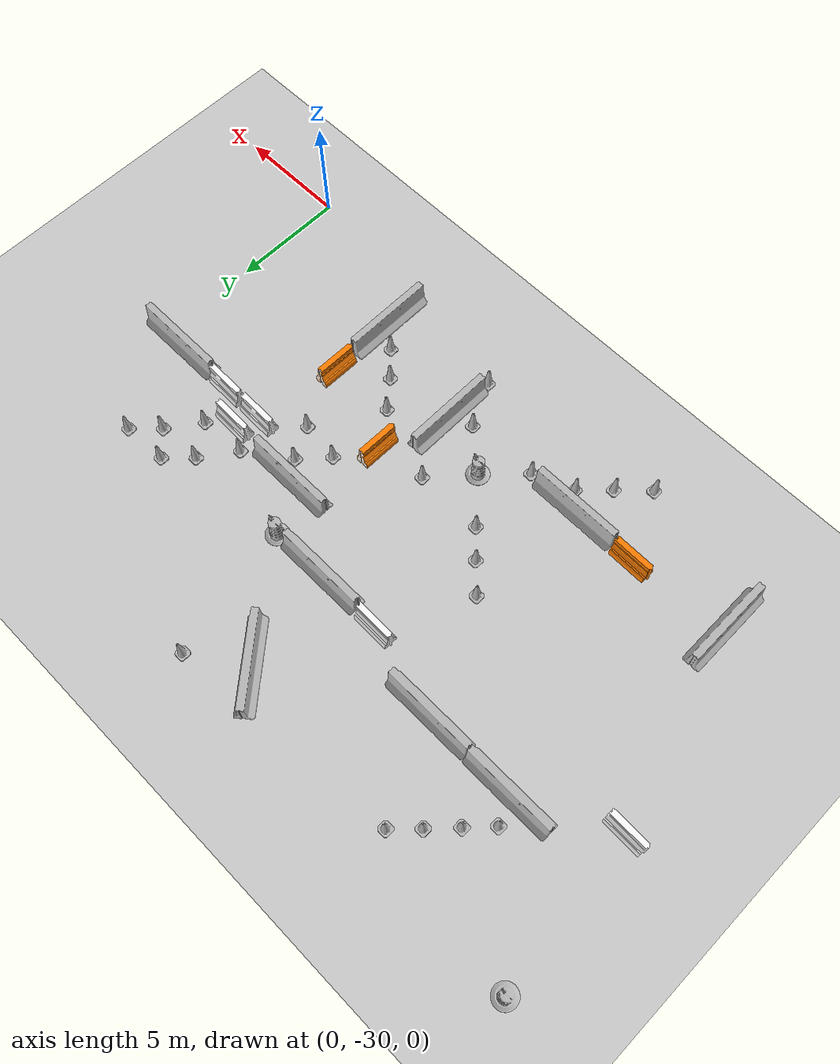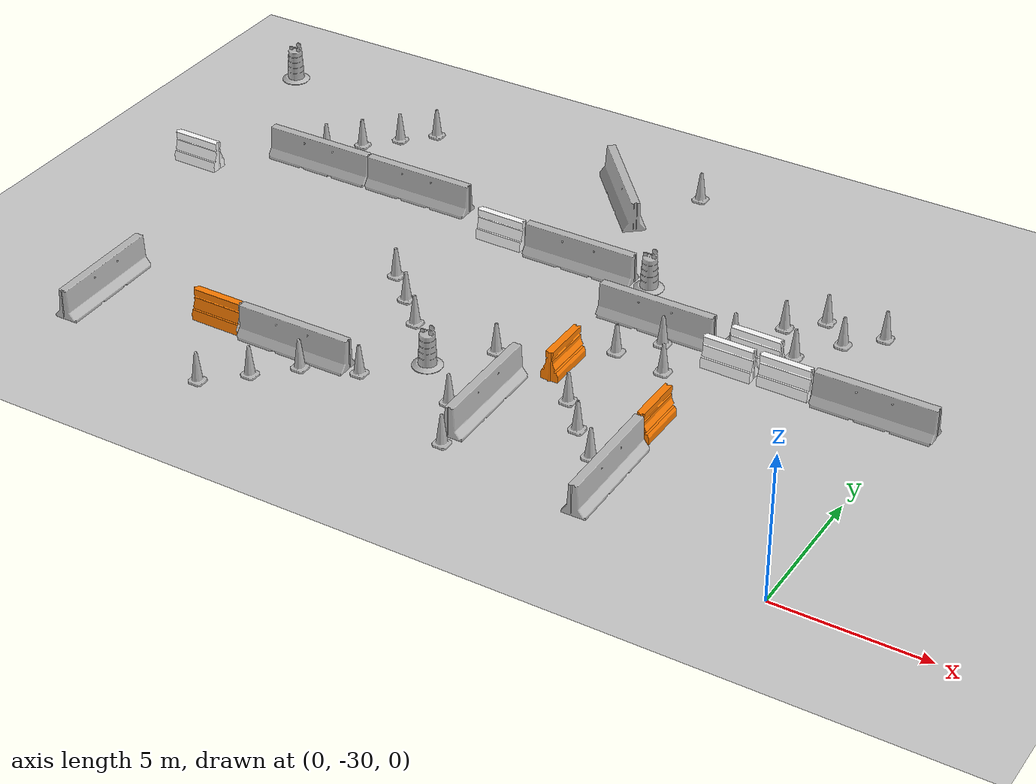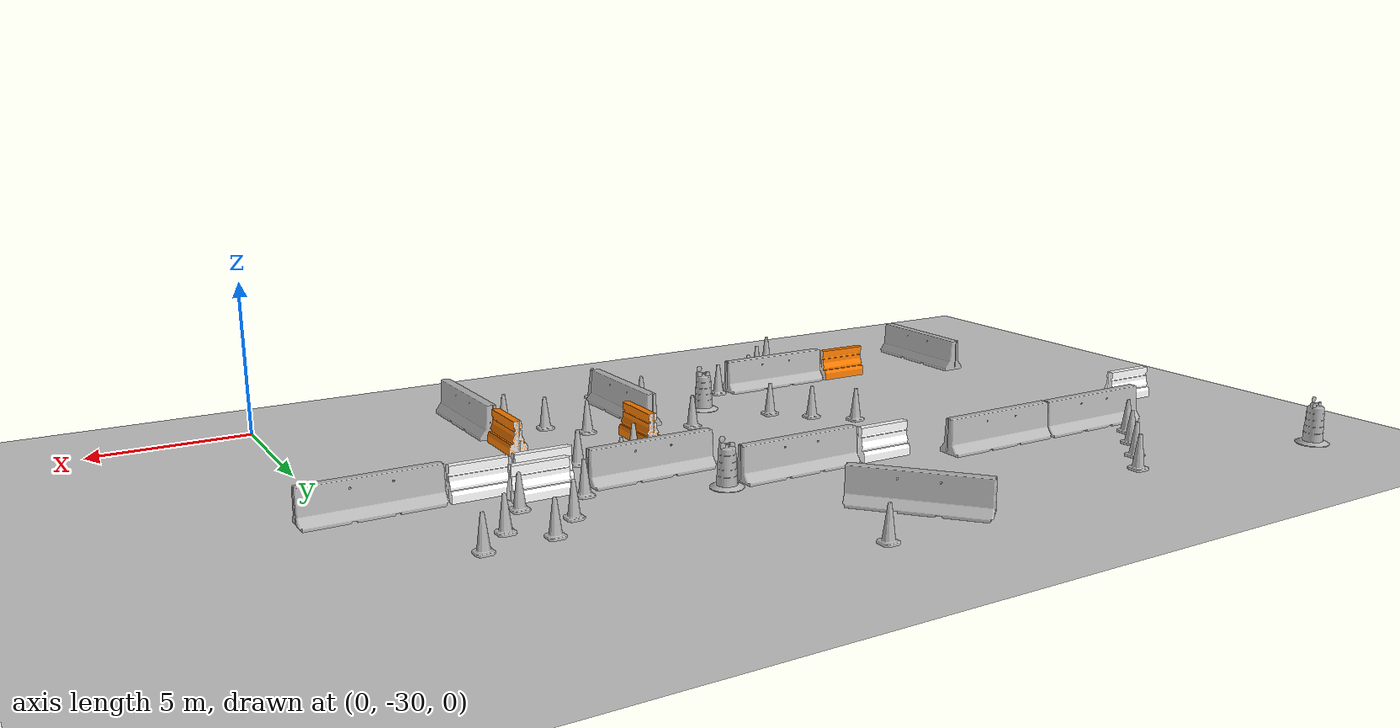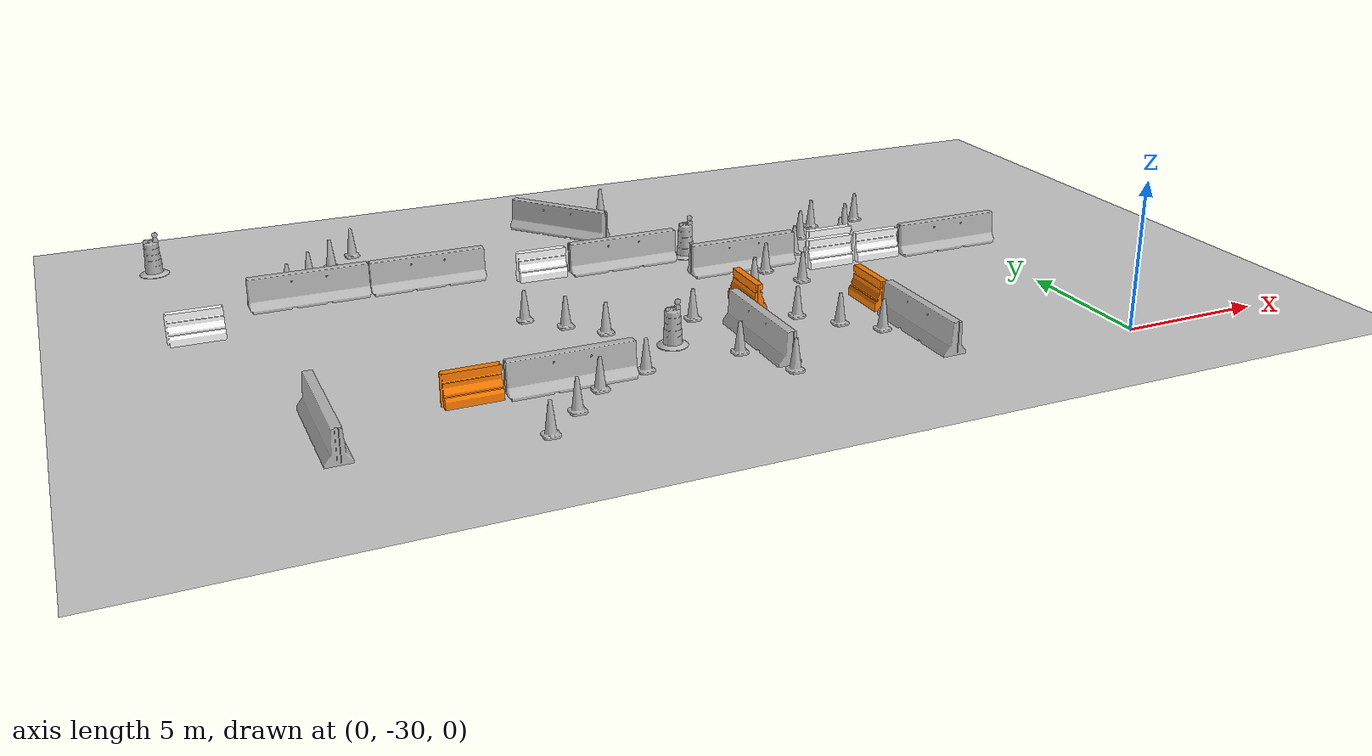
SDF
<sdf version="1.6">
 <world name="default">
  <model name="ground_plane">
   <static>1</static>
   <link name="link">
    <collision name="collision">
     <geometry><plane><normal>0 0 1</normal><size>100 100</size></plane></geometry>
     <surface>
      <contact><collide_bitmask>65535</collide_bitmask></contact>
      <friction><ode><mu>100</mu><mu2>50</mu2></ode></friction>
     </surface>
    </collision>
    <visual name="visual">
     <cast_shadows>0</cast_shadows>
     <geometry><plane><normal>0 0 1</normal><size>100 100</size></plane></geometry>
     <material>
      <script><uri>file://media/materials/scripts/gazebo.material</uri><name>Gazebo/Grey</name></script>
     </material>
    </visual>
   </link>
  </model>
  <model name="Construction Cone_0_clone_0_clone_clone_clone_clone_clone_3_clone_0_clone_clone_clone_1_clone_1_clone_clone_clone_0_clone_5_clone_16">
   <static>1</static>
   <link name="link">
    <collision name="collision">
     <geometry>
      <mesh><scale>10 10 10</scale><uri>model://construction_cone/meshes/construction_cone.dae</uri></mesh>
     </geometry>
    </collision>
    <visual name="visual">
     <geometry>
      <mesh><scale>10 10 10</scale><uri>model://construction_cone/meshes/construction_cone.dae</uri></mesh>
     </geometry>
    </visual>
    <inertial>
     <inertia><ixx>1</ixx><ixy>0</ixy><ixz>0</ixz><iyy>1</iyy><iyz>0</iyz><izz>1</izz></inertia>
     <mass>1</mass>
    </inertial>
   </link>
   <pose>-11.475 -11.6571 -0 0 -1e-06 -0.001073</pose>
  </model>
  <model name="Construction Cone_0_clone_0_clone_clone_clone_clone_clone_3_clone_0_clone_clone_clone_1_clone_1_clone_clone_clone_0_clone_5_clone_12_clone_1">
   <static>1</static>
   <link name="link">
    <collision name="collision">
     <geometry>
      <mesh><scale>10 10 10</scale><uri>model://construction_cone/meshes/construction_cone.dae</uri></mesh>
     </geometry>
    </collision>
    <visual name="visual">
     <geometry>
      <mesh><scale>10 10 10</scale><uri>model://construction_cone/meshes/construction_cone.dae</uri></mesh>
     </geometry>
    </visual>
    <inertial>
     <inertia><ixx>1</ixx><ixy>0</ixy><ixz>0</ixz><iyy>1</iyy><iyz>0</iyz><izz>1</izz></inertia>
     <mass>1</mass>
    </inertial>
   </link>
   <pose>-21.6711 -12.5523 -0 0 -1e-06 -0.001073</pose>
  </model>
  <model name="Construction Cone_0_clone_0_clone_clone_clone_clone_clone_3_clone_0_clone_clone_clone_1_clone_1_clone_clone_clone_0_clone_5_clone_12_clone_2">
   <static>1</static>
   <link name="link">
    <collision name="collision">
     <geometry>
      <mesh><scale>10 10 10</scale><uri>model://construction_cone/meshes/construction_cone.dae</uri></mesh>
     </geometry>
    </collision>
    <visual name="visual">
     <geometry>
      <mesh><scale>10 10 10</scale><uri>model://construction_cone/meshes/construction_cone.dae</uri></mesh>
     </geometry>
    </visual>
    <inertial>
     <inertia><ixx>1</ixx><ixy>0</ixy><ixz>0</ixz><iyy>1</iyy><iyz>0</iyz><izz>1</izz></inertia>
     <mass>1</mass>
    </inertial>
   </link>
   <pose>-22.6241 -13.5079 -0 0 -1e-06 -0.001073</pose>
  </model>
  <model name="Construction Cone_0_clone_0_clone_clone_clone_clone_clone_3_clone_0_clone_clone_clone_1_clone_1_clone_clone_clone_0_clone_5_clone_12_clone_3">
   <static>1</static>
   <link name="link">
    <collision name="collision">
     <geometry>
      <mesh><scale>10 10 10</scale><uri>model://construction_cone/meshes/construction_cone.dae</uri></mesh>
     </geometry>
    </collision>
    <visual name="visual">
     <geometry>
      <mesh><scale>10 10 10</scale><uri>model://construction_cone/meshes/construction_cone.dae</uri></mesh>
     </geometry>
    </visual>
    <inertial>
     <inertia><ixx>1</ixx><ixy>0</ixy><ixz>0</ixz><iyy>1</iyy><iyz>0</iyz><izz>1</izz></inertia>
     <mass>1</mass>
    </inertial>
   </link>
   <pose>-23.5762 -14.5201 -0 0 -1e-06 -0.001073</pose>
  </model>
  <model name="Construction Cone_0_clone_0_clone_clone_clone_clone_clone_3_clone_0_clone_clone_clone_1_clone_1_clone_clone_clone_0_clone_5_clone_12_clone_4">
   <static>1</static>
   <link name="link">
    <collision name="collision">
     <geometry>
      <mesh><scale>10 10 10</scale><uri>model://construction_cone/meshes/construction_cone.dae</uri></mesh>
     </geometry>
    </collision>
    <visual name="visual">
     <geometry>
      <mesh><scale>10 10 10</scale><uri>model://construction_cone/meshes/construction_cone.dae</uri></mesh>
     </geometry>
    </visual>
    <inertial>
     <inertia><ixx>1</ixx><ixy>0</ixy><ixz>0</ixz><iyy>1</iyy><iyz>0</iyz><izz>1</izz></inertia>
     <mass>1</mass>
    </inertial>
   </link>
   <pose>-24.4734 -15.4759 -9e-06 1e-06 -1e-06 -0.001073</pose>
  </model>
  <model name="jersey_barrier_clone_clone_clone_0_clone_clone_clone_clone_0_clone_0_clone_clone">
   <static>1</static>
   <link name="link">
    <visual name="visual">
     <geometry><mesh><uri>model://jersey_barrier/meshes/jersey_barrier.dae</uri></mesh></geometry>
    </visual>
    <collision name="upright">
     <pose>0 0 0.5715 0 -0 0</pose>
     <geometry><box><size>4.06542 0.3063 1.143</size></box></geometry>
    </collision>
    <collision name="base">
     <pose>0 0 0.032258 0 -0 0</pose>
     <geometry><box><size>4.06542 0.8107 0.064516</size></box></geometry>
    </collision>
    <collision name="base2">
     <pose>0 0 0.1 0 -0 0</pose>
     <geometry><box><size>4.06542 0.65 0.1</size></box></geometry>
    </collision>
    <collision name="base3">
     <pose>0 0 0.2 0 -0 0</pose>
     <geometry><box><size>4.06542 0.5 0.1</size></box></geometry>
    </collision>
    <collision name="left-angle">
     <pose>0 -0.224 0.2401 0.9 -0 0</pose>
     <geometry><box><size>4.06542 0.5 0.064516</size></box></geometry>
    </collision>
    <collision name="right-angle">
     <pose>0 0.224 0.2401 -0.9 0 0</pose>
     <geometry><box><size>4.06542 0.5 0.064516</size></box></geometry>
    </collision>
   </link>
   <pose>-23.9374 -16.5975 0 0 -0 0</pose>
  </model>
  <model name="jersey_barrier_clone_clone_clone_0_clone_clone_clone_clone_0_clone_0_clone_clone_0">
   <static>1</static>
   <link name="link">
    <visual name="visual">
     <geometry><mesh><uri>model://jersey_barrier/meshes/jersey_barrier.dae</uri></mesh></geometry>
    </visual>
    <collision name="upright">
     <pose>0 0 0.5715 0 -0 0</pose>
     <geometry><box><size>4.06542 0.3063 1.143</size></box></geometry>
    </collision>
    <collision name="base">
     <pose>0 0 0.032258 0 -0 0</pose>
     <geometry><box><size>4.06542 0.8107 0.064516</size></box></geometry>
    </collision>
    <collision name="base2">
     <pose>0 0 0.1 0 -0 0</pose>
     <geometry><box><size>4.06542 0.65 0.1</size></box></geometry>
    </collision>
    <collision name="base3">
     <pose>0 0 0.2 0 -0 0</pose>
     <geometry><box><size>4.06542 0.5 0.1</size></box></geometry>
    </collision>
    <collision name="left-angle">
     <pose>0 -0.224 0.2401 0.9 -0 0</pose>
     <geometry><box><size>4.06542 0.5 0.064516</size></box></geometry>
    </collision>
    <collision name="right-angle">
     <pose>0 0.224 0.2401 -0.9 0 0</pose>
     <geometry><box><size>4.06542 0.5 0.064516</size></box></geometry>
    </collision>
   </link>
   <pose>-19.8395 -16.619 0 0 -0 0</pose>
  </model>
  <model name="drc_practice_white_jersey_barrier_clone_clone_clone_clone_clone_clone_clone_clone_clone_clone_0_clone_clone_2_clone">
   <static>1</static>
   <link name="link">
    <visual name="visual">
     <geometry>
      <mesh><uri>model://drc_practice_white_jersey_barrier/meshes/jersey_barrier.dae</uri></mesh>
     </geometry>
    </visual>
    <collision name="collision">
     <geometry>
      <mesh><uri>model://drc_practice_white_jersey_barrier/meshes/jersey_barrier.dae</uri></mesh>
     </geometry>
    </collision>
   </link>
   <pose>-27.8553 -18.5213 0 0 0 -1.58176</pose>
  </model>
  <model name="Construction Barrel_clone_clone_0_clone_clone_0_clone_clone_0_clone_clone_clone">
   <static>1</static>
   <link name="link">
    <inertial>
     <pose>0 0 0.4 0 -0 0</pose>
     <mass>500</mass>
     <inertia><ixx>51.2096</ixx><iyy>51.2096</iyy><izz>25</izz><ixy>0</ixy><ixz>0</ixz><iyz>0</iyz></inertia>
    </inertial>
    <collision name="collision">
     <geometry><mesh><uri>model://construction_barrel/meshes/construction_barrel.dae</uri></mesh></geometry>
    </collision>
    <visual name="visual">
     <geometry><mesh><uri>model://construction_barrel/meshes/construction_barrel.dae</uri></mesh></geometry>
    </visual>
   </link>
   <pose>-28.5457 -11.5397 0 0 -0 0.032857</pose>
  </model>
  <model name="drc_practice_white_jersey_barrier_clone_clone_clone_clone_clone_clone_clone_clone_clone_clone_0_clone_clone_0_clone_clone_6_clone">
   <static>1</static>
   <link name="link">
    <visual name="visual">
     <geometry>
      <mesh><uri>model://drc_practice_white_jersey_barrier/meshes/jersey_barrier.dae</uri></mesh>
     </geometry>
    </visual>
    <collision name="collision">
     <geometry>
      <mesh><uri>model://drc_practice_white_jersey_barrier/meshes/jersey_barrier.dae</uri></mesh>
     </geometry>
    </collision>
   </link>
   <pose>-15.947 -17.5425 0 0 0 -1.58176</pose>
  </model>
  <model name="Construction Barrel_clone_clone_0_clone_clone_0_clone_clone_clone_0">
   <static>1</static>
   <link name="link">
    <inertial>
     <pose>0 0 0.4 0 -0 0</pose>
     <mass>500</mass>
     <inertia><ixx>51.2096</ixx><iyy>51.2096</iyy><izz>25</izz><ixy>0</ixy><ixz>0</ixz><iyz>0</iyz></inertia>
    </inertial>
    <collision name="collision">
     <geometry><mesh><uri>model://construction_barrel/meshes/construction_barrel.dae</uri></mesh></geometry>
    </collision>
    <visual name="visual">
     <geometry><mesh><uri>model://construction_barrel/meshes/construction_barrel.dae</uri></mesh></geometry>
    </visual>
   </link>
   <pose>-10.3421 -17.5347 -0 0 -0 0.00131</pose>
  </model>
  <model name="jersey_barrier_clone_clone_clone_0_clone_clone_clone_clone_0_clone_0_clone_clone_0_clone">
   <static>1</static>
   <link name="link">
    <visual name="visual">
     <geometry><mesh><uri>model://jersey_barrier/meshes/jersey_barrier.dae</uri></mesh></geometry>
    </visual>
    <collision name="upright">
     <pose>0 0 0.5715 0 -0 0</pose>
     <geometry><box><size>4.06542 0.3063 1.143</size></box></geometry>
    </collision>
    <collision name="base">
     <pose>0 0 0.032258 0 -0 0</pose>
     <geometry><box><size>4.06542 0.8107 0.064516</size></box></geometry>
    </collision>
    <collision name="base2">
     <pose>0 0 0.1 0 -0 0</pose>
     <geometry><box><size>4.06542 0.65 0.1</size></box></geometry>
    </collision>
    <collision name="base3">
     <pose>0 0 0.2 0 -0 0</pose>
     <geometry><box><size>4.06542 0.5 0.1</size></box></geometry>
    </collision>
    <collision name="left-angle">
     <pose>0 -0.224 0.2401 0.9 -0 0</pose>
     <geometry><box><size>4.06542 0.5 0.064516</size></box></geometry>
    </collision>
    <collision name="right-angle">
     <pose>0 0.224 0.2401 -0.9 0 0</pose>
     <geometry><box><size>4.06542 0.5 0.064516</size></box></geometry>
    </collision>
   </link>
   <pose>-8.98529 -19.5598 0 0 -0 0</pose>
  </model>
  <model name="drc_practice_white_jersey_barrier_clone_clone_clone_clone_clone_clone_clone_clone_clone_clone_0_clone_clone_0_clone_clone_6_clone_0_clone">
   <static>1</static>
   <link name="link">
    <visual name="visual">
     <geometry>
      <mesh><uri>model://drc_practice_white_jersey_barrier/meshes/jersey_barrier.dae</uri></mesh>
     </geometry>
    </visual>
    <collision name="collision">
     <geometry>
      <mesh><uri>model://drc_practice_white_jersey_barrier/meshes/jersey_barrier.dae</uri></mesh>
     </geometry>
    </collision>
   </link>
   <pose>-5.43866 -19.5826 0 0 0 -1.58176</pose>
  </model>
  <model name="Construction Cone_0_clone_0_clone_clone_clone_clone_clone_3_clone_0_clone_clone_clone_1_clone_1_clone_clone_clone_0_clone_clone_clone_4_clone_1_clone_3_clone_clone_1_clone_2_clone_0_clone_clone_clone_1_clone_0">
   <static>1</static>
   <link name="link">
    <collision name="collision">
     <geometry>
      <mesh><scale>10 10 10</scale><uri>model://construction_cone/meshes/construction_cone.dae</uri></mesh>
     </geometry>
    </collision>
    <visual name="visual">
     <geometry>
      <mesh><scale>10 10 10</scale><uri>model://construction_cone/meshes/construction_cone.dae</uri></mesh>
     </geometry>
    </visual>
    <inertial>
     <inertia><ixx>1</ixx><ixy>0</ixy><ixz>0</ixz><iyy>1</iyy><iyz>0</iyz><izz>1</izz></inertia>
     <mass>1</mass>
    </inertial>
   </link>
   <pose>-4.48956 -18.7885 -0 0 0 -0.001073</pose>
  </model>
  <model name="Construction Cone_0_clone_0_clone_clone_clone_clone_clone_3_clone_0_clone_clone_clone_1_clone_1_clone_clone_clone_0_clone_clone_clone_4_clone_1_clone_3_clone_clone_1_clone_2_clone_0_clone_clone_clone_1_clone_1">
   <static>1</static>
   <link name="link">
    <collision name="collision">
     <geometry>
      <mesh><scale>10 10 10</scale><uri>model://construction_cone/meshes/construction_cone.dae</uri></mesh>
     </geometry>
    </collision>
    <visual name="visual">
     <geometry>
      <mesh><scale>10 10 10</scale><uri>model://construction_cone/meshes/construction_cone.dae</uri></mesh>
     </geometry>
    </visual>
    <inertial>
     <inertia><ixx>1</ixx><ixy>0</ixy><ixz>0</ixz><iyy>1</iyy><iyz>0</iyz><izz>1</izz></inertia>
     <mass>1</mass>
    </inertial>
   </link>
   <pose>-6.52081 -18.9426 -0 0 0 -0.001073</pose>
  </model>
  <model name="Construction Cone_0_clone_0_clone_clone_clone_clone_clone_3_clone_0_clone_clone_clone_1_clone_1_clone_clone_clone_0_clone_clone_clone_4_clone_1_clone_3_clone_clone_1_clone_2_clone_0_clone_clone_clone_1_clone_2">
   <static>1</static>
   <link name="link">
    <collision name="collision">
     <geometry>
      <mesh><scale>10 10 10</scale><uri>model://construction_cone/meshes/construction_cone.dae</uri></mesh>
     </geometry>
    </collision>
    <visual name="visual">
     <geometry>
      <mesh><scale>10 10 10</scale><uri>model://construction_cone/meshes/construction_cone.dae</uri></mesh>
     </geometry>
    </visual>
    <inertial>
     <inertia><ixx>1</ixx><ixy>0</ixy><ixz>0</ixz><iyy>1</iyy><iyz>0</iyz><izz>1</izz></inertia>
     <mass>1</mass>
    </inertial>
   </link>
   <pose>-5.47081 -17.45 -0 0 0 -0.001073</pose>
  </model>
  <model name="Construction Cone_0_clone_0_clone_clone_clone_clone_clone_3_clone_0_clone_clone_clone_1_clone_1_clone_clone_clone_0_clone_clone_clone_4_clone_1_clone_3_clone_clone_1_clone_2_clone_0_clone_clone_clone_1_clone_3">
   <static>1</static>
   <link name="link">
    <collision name="collision">
     <geometry>
      <mesh><scale>10 10 10</scale><uri>model://construction_cone/meshes/construction_cone.dae</uri></mesh>
     </geometry>
    </collision>
    <visual name="visual">
     <geometry>
      <mesh><scale>10 10 10</scale><uri>model://construction_cone/meshes/construction_cone.dae</uri></mesh>
     </geometry>
    </visual>
    <inertial>
     <inertia><ixx>1</ixx><ixy>0</ixy><ixz>0</ixz><iyy>1</iyy><iyz>0</iyz><izz>1</izz></inertia>
     <mass>1</mass>
    </inertial>
   </link>
   <pose>-4.45621 -16.4332 -0 0 -1e-06 -0.001073</pose>
  </model>
  <model name="Construction Cone_0_clone_0_clone_clone_clone_clone_clone_3_clone_0_clone_clone_clone_1_clone_1_clone_clone_clone_0_clone_clone_clone_4_clone_1_clone_3_clone_clone_1_clone_2_clone_0_clone_clone_clone_1_clone_4">
   <static>1</static>
   <link name="link">
    <collision name="collision">
     <geometry>
      <mesh><scale>10 10 10</scale><uri>model://construction_cone/meshes/construction_cone.dae</uri></mesh>
     </geometry>
    </collision>
    <visual name="visual">
     <geometry>
      <mesh><scale>10 10 10</scale><uri>model://construction_cone/meshes/construction_cone.dae</uri></mesh>
     </geometry>
    </visual>
    <inertial>
     <inertia><ixx>1</ixx><ixy>0</ixy><ixz>0</ixz><iyy>1</iyy><iyz>0</iyz><izz>1</izz></inertia>
     <mass>1</mass>
    </inertial>
   </link>
   <pose>-3.47533 -17.3748 -0 0 -0 -0.001073</pose>
  </model>
  <model name="Construction Cone_0_clone_0_clone_clone_clone_clone_clone_3_clone_0_clone_clone_clone_1_clone_1_clone_clone_clone_0_clone_clone_clone_4_clone_1_clone_3_clone_clone_1_clone_2_clone_0_clone_clone_clone_1_clone_5">
   <static>1</static>
   <link name="link">
    <collision name="collision">
     <geometry>
      <mesh><scale>10 10 10</scale><uri>model://construction_cone/meshes/construction_cone.dae</uri></mesh>
     </geometry>
    </collision>
    <visual name="visual">
     <geometry>
      <mesh><scale>10 10 10</scale><uri>model://construction_cone/meshes/construction_cone.dae</uri></mesh>
     </geometry>
    </visual>
    <inertial>
     <inertia><ixx>1</ixx><ixy>0</ixy><ixz>0</ixz><iyy>1</iyy><iyz>0</iyz><izz>1</izz></inertia>
     <mass>1</mass>
    </inertial>
   </link>
   <pose>-2.46099 -16.357 -0 0 0 -0.001073</pose>
  </model>
  <model name="drc_practice_white_jersey_barrier_clone_clone_clone_clone_clone_clone_clone_clone_clone_clone_0_clone_clone_0_clone_clone_6_clone_0_clone_clone">
   <static>1</static>
   <link name="link">
    <visual name="visual">
     <geometry>
      <mesh><uri>model://drc_practice_white_jersey_barrier/meshes/jersey_barrier.dae</uri></mesh>
     </geometry>
    </visual>
    <collision name="collision">
     <geometry>
      <mesh><uri>model://drc_practice_white_jersey_barrier/meshes/jersey_barrier.dae</uri></mesh>
     </geometry>
    </collision>
   </link>
   <pose>-5.93703 -20.4974 0 0 0 -1.58176</pose>
  </model>
  <model name="drc_practice_white_jersey_barrier_clone_clone_clone_clone_clone_clone_clone_clone_clone_clone_0_clone_clone_0_clone_clone_6_clone_0_clone_clone_0">
   <static>1</static>
   <link name="link">
    <visual name="visual">
     <geometry>
      <mesh><uri>model://drc_practice_white_jersey_barrier/meshes/jersey_barrier.dae</uri></mesh>
     </geometry>
    </visual>
    <collision name="collision">
     <geometry>
      <mesh><uri>model://drc_practice_white_jersey_barrier/meshes/jersey_barrier.dae</uri></mesh>
     </geometry>
    </collision>
   </link>
   <pose>-3.97801 -20.4954 0 0 0 -1.58176</pose>
  </model>
  <model name="jersey_barrier_clone_clone_clone_0_clone_clone_clone_clone_0_clone_0_clone_clone_0_clone_clone">
   <static>1</static>
   <link name="link">
    <visual name="visual">
     <geometry><mesh><uri>model://jersey_barrier/meshes/jersey_barrier.dae</uri></mesh></geometry>
    </visual>
    <collision name="upright">
     <pose>0 0 0.5715 0 -0 0</pose>
     <geometry><box><size>4.06542 0.3063 1.143</size></box></geometry>
    </collision>
    <collision name="base">
     <pose>0 0 0.032258 0 -0 0</pose>
     <geometry><box><size>4.06542 0.8107 0.064516</size></box></geometry>
    </collision>
    <collision name="base2">
     <pose>0 0 0.1 0 -0 0</pose>
     <geometry><box><size>4.06542 0.65 0.1</size></box></geometry>
    </collision>
    <collision name="base3">
     <pose>0 0 0.2 0 -0 0</pose>
     <geometry><box><size>4.06542 0.5 0.1</size></box></geometry>
    </collision>
    <collision name="left-angle">
     <pose>0 -0.224 0.2401 0.9 -0 0</pose>
     <geometry><box><size>4.06542 0.5 0.064516</size></box></geometry>
    </collision>
    <collision name="right-angle">
     <pose>0 0.224 0.2401 -0.9 0 0</pose>
     <geometry><box><size>4.06542 0.5 0.064516</size></box></geometry>
    </collision>
   </link>
   <pose>-0.967336 -20.5638 0 0 -0 0</pose>
  </model>
  <model name="Construction Cone_0_clone_0_clone_clone_clone_clone_clone_3_clone_0_clone_clone_clone_1_clone_1_clone_clone_clone_0_clone_clone_clone_4_clone_1_clone_3_clone_clone_1_clone_2_clone_0_clone_clone_clone_1_clone_clone_0">
   <static>1</static>
   <link name="link">
    <collision name="collision">
     <geometry>
      <mesh><scale>10 10 10</scale><uri>model://construction_cone/meshes/construction_cone.dae</uri></mesh>
     </geometry>
    </collision>
    <visual name="visual">
     <geometry>
      <mesh><scale>10 10 10</scale><uri>model://construction_cone/meshes/construction_cone.dae</uri></mesh>
     </geometry>
    </visual>
    <inertial>
     <inertia><ixx>1</ixx><ixy>0</ixy><ixz>0</ixz><iyy>1</iyy><iyz>0</iyz><izz>1</izz></inertia>
     <mass>1</mass>
    </inertial>
   </link>
   <pose>-7.63896 -21.6605 -0 0 -1e-06 -0.001073</pose>
  </model>
  <model name="drc_practice_organge_jersey_barrier_clone_clone_0_clone_0_clone_0_clone_clone_clone_0_clone_clone_clone_clone">
   <static>1</static>
   <link name="link">
    <visual name="visual">
     <geometry>
      <mesh><uri>model://drc_practice_orange_jersey_barrier/meshes/jersey_barrier.dae</uri></mesh>
     </geometry>
    </visual>
    <collision name="collision">
     <geometry>
      <mesh><uri>model://drc_practice_orange_jersey_barrier/meshes/jersey_barrier.dae</uri></mesh>
     </geometry>
    </collision>
   </link>
   <pose>-10.4663 -22.9712 0 0 -0 0</pose>
  </model>
  <model name="Construction Cone_0_clone_0_clone_clone_clone_clone_clone_3_clone_0_clone_clone_clone_1_clone_1_clone_clone_clone_0_clone_clone_clone_4_clone_1_clone_3_clone_clone_1_clone_2_clone_0_clone_clone_clone_1_clone_clone_clone">
   <static>1</static>
   <link name="link">
    <collision name="collision">
     <geometry>
      <mesh><scale>10 10 10</scale><uri>model://construction_cone/meshes/construction_cone.dae</uri></mesh>
     </geometry>
    </collision>
    <visual name="visual">
     <geometry>
      <mesh><scale>10 10 10</scale><uri>model://construction_cone/meshes/construction_cone.dae</uri></mesh>
     </geometry>
    </visual>
    <inertial>
     <inertia><ixx>1</ixx><ixy>0</ixy><ixz>0</ixz><iyy>1</iyy><iyz>0</iyz><izz>1</izz></inertia>
     <mass>1</mass>
    </inertial>
   </link>
   <pose>-9.42001 -21.4342 -6e-06 2e-06 -0 -0.001073</pose>
  </model>
  <model name="Construction Cone_0_clone_0_clone_clone_clone_clone_clone_3_clone_0_clone_clone_clone_1_clone_1_clone_clone_clone_0_clone_clone_clone_4_clone_1_clone_3_clone_clone_1_clone_2_clone_0_clone_clone_clone_1_clone_clone_0_clone">
   <static>1</static>
   <link name="link">
    <collision name="collision">
     <geometry>
      <mesh><scale>10 10 10</scale><uri>model://construction_cone/meshes/construction_cone.dae</uri></mesh>
     </geometry>
    </collision>
    <visual name="visual">
     <geometry>
      <mesh><scale>10 10 10</scale><uri>model://construction_cone/meshes/construction_cone.dae</uri></mesh>
     </geometry>
    </visual>
    <inertial>
     <inertia><ixx>1</ixx><ixy>0</ixy><ixz>0</ixz><iyy>1</iyy><iyz>0</iyz><izz>1</izz></inertia>
     <mass>1</mass>
    </inertial>
   </link>
   <pose>-8.38972 -20.2717 -8e-06 0 1e-06 -0.001073</pose>
  </model>
  <model name="jersey_barrier_clone_clone_clone_clone_clone_clone_clone_0_clone_clone_0">
   <static>1</static>
   <link name="link">
    <visual name="visual">
     <geometry><mesh><uri>model://jersey_barrier/meshes/jersey_barrier.dae</uri></mesh></geometry>
    </visual>
    <collision name="upright">
     <pose>0 0 0.5715 0 -0 0</pose>
     <geometry><box><size>4.06542 0.3063 1.143</size></box></geometry>
    </collision>
    <collision name="base">
     <pose>0 0 0.032258 0 -0 0</pose>
     <geometry><box><size>4.06542 0.8107 0.064516</size></box></geometry>
    </collision>
    <collision name="base2">
     <pose>0 0 0.1 0 -0 0</pose>
     <geometry><box><size>4.06542 0.65 0.1</size></box></geometry>
    </collision>
    <collision name="base3">
     <pose>0 0 0.2 0 -0 0</pose>
     <geometry><box><size>4.06542 0.5 0.1</size></box></geometry>
    </collision>
    <collision name="left-angle">
     <pose>0 -0.224 0.2401 0.9 -0 0</pose>
     <geometry><box><size>4.06542 0.5 0.064516</size></box></geometry>
    </collision>
    <collision name="right-angle">
     <pose>0 0.224 0.2401 -0.9 0 0</pose>
     <geometry><box><size>4.06542 0.5 0.064516</size></box></geometry>
    </collision>
   </link>
   <pose>-11.4906 -26.0617 0 0 0 -1.56391</pose>
  </model>
  <model name="Construction Cone_0_clone_0_clone_clone_clone_clone_clone_3_clone_0_clone_clone_clone_1_clone_1_clone_clone_clone_0_clone_clone_clone_4_clone_1_clone_3_clone_clone_1_clone_2_clone_0_clone_clone_clone_1_clone_clone_clone_clone">
   <static>1</static>
   <link name="link">
    <collision name="collision">
     <geometry>
      <mesh><scale>10 10 10</scale><uri>model://construction_cone/meshes/construction_cone.dae</uri></mesh>
     </geometry>
    </collision>
    <visual name="visual">
     <geometry>
      <mesh><scale>10 10 10</scale><uri>model://construction_cone/meshes/construction_cone.dae</uri></mesh>
     </geometry>
    </visual>
    <inertial>
     <inertia><ixx>1</ixx><ixy>0</ixy><ixz>0</ixz><iyy>1</iyy><iyz>0</iyz><izz>1</izz></inertia>
     <mass>1</mass>
    </inertial>
   </link>
   <pose>-11.5191 -28.4323 -0 0 -1e-06 -0.001073</pose>
  </model>
  <model name="Construction Cone_0_clone_0_clone_clone_clone_clone_clone_3_clone_0_clone_clone_clone_1_clone_1_clone_clone_clone_0_clone_clone_clone_4_clone_1_clone_3_clone_clone_1_clone_2_clone_0_clone_clone_clone_1_clone_clone_clone_clone_0">
   <static>1</static>
   <link name="link">
    <collision name="collision">
     <geometry>
      <mesh><scale>10 10 10</scale><uri>model://construction_cone/meshes/construction_cone.dae</uri></mesh>
     </geometry>
    </collision>
    <visual name="visual">
     <geometry>
      <mesh><scale>10 10 10</scale><uri>model://construction_cone/meshes/construction_cone.dae</uri></mesh>
     </geometry>
    </visual>
    <inertial>
     <inertia><ixx>1</ixx><ixy>0</ixy><ixz>0</ixz><iyy>1</iyy><iyz>0</iyz><izz>1</izz></inertia>
     <mass>1</mass>
    </inertial>
   </link>
   <pose>-12.4644 -26.5178 -0 0 0 -0.001073</pose>
  </model>
  <model name="Construction Cone_0_clone_0_clone_clone_clone_clone_clone_3_clone_0_clone_clone_clone_1_clone_1_clone_clone_clone_0_clone_clone_clone_4_clone_1_clone_3_clone_clone_1_clone_2_clone_0_clone_clone_clone_1_clone_clone_clone_clone_1">
   <static>1</static>
   <link name="link">
    <collision name="collision">
     <geometry>
      <mesh><scale>10 10 10</scale><uri>model://construction_cone/meshes/construction_cone.dae</uri></mesh>
     </geometry>
    </collision>
    <visual name="visual">
     <geometry>
      <mesh><scale>10 10 10</scale><uri>model://construction_cone/meshes/construction_cone.dae</uri></mesh>
     </geometry>
    </visual>
    <inertial>
     <inertia><ixx>1</ixx><ixy>0</ixy><ixz>0</ixz><iyy>1</iyy><iyz>0</iyz><izz>1</izz></inertia>
     <mass>1</mass>
    </inertial>
   </link>
   <pose>-12.6647 -23.3676 -0 0 0 -0.001073</pose>
  </model>
  <model name="Construction Barrel_clone_clone_0_clone_clone_0_clone_clone_clone_0_clone">
   <static>1</static>
   <link name="link">
    <inertial>
     <pose>0 0 0.4 0 -0 0</pose>
     <mass>500</mass>
     <inertia><ixx>51.2096</ixx><iyy>51.2096</iyy><izz>25</izz><ixy>0</ixy><ixz>0</ixz><iyz>0</iyz></inertia>
    </inertial>
    <collision name="collision">
     <geometry><mesh><uri>model://construction_barrel/meshes/construction_barrel.dae</uri></mesh></geometry>
    </collision>
    <visual name="visual">
     <geometry><mesh><uri>model://construction_barrel/meshes/construction_barrel.dae</uri></mesh></geometry>
    </visual>
   </link>
   <pose>-14.1402 -25.092 1e-06 3e-06 2e-06 0.001159</pose>
  </model>
  <model name="Construction Cone_0_clone_0_clone_clone_clone_clone_clone_3_clone_0_clone_clone_clone_1_clone_1_clone_clone_clone_0_clone_clone_clone_4_clone_1_clone_3_clone_clone_1_clone_2_clone_0_clone_clone_clone_1_clone_clone_clone_clone_0_clone">
   <static>1</static>
   <link name="link">
    <collision name="collision">
     <geometry>
      <mesh><scale>10 10 10</scale><uri>model://construction_cone/meshes/construction_cone.dae</uri></mesh>
     </geometry>
    </collision>
    <visual name="visual">
     <geometry>
      <mesh><scale>10 10 10</scale><uri>model://construction_cone/meshes/construction_cone.dae</uri></mesh>
     </geometry>
    </visual>
    <inertial>
     <inertia><ixx>1</ixx><ixy>0</ixy><ixz>0</ixz><iyy>1</iyy><iyz>0</iyz><izz>1</izz></inertia>
     <mass>1</mass>
    </inertial>
   </link>
   <pose>-15.7268 -23.3313 -0 -0 -0 -0.001073</pose>
  </model>
  <model name="Construction Cone_0_clone_0_clone_clone_clone_clone_clone_3_clone_0_clone_clone_clone_1_clone_1_clone_clone_clone_0_clone_clone_clone_4_clone_1_clone_3_clone_clone_1_clone_2_clone_0_clone_clone_clone_1_clone_clone_clone_clone_0_clone_0">
   <static>1</static>
   <link name="link">
    <collision name="collision">
     <geometry>
      <mesh><scale>10 10 10</scale><uri>model://construction_cone/meshes/construction_cone.dae</uri></mesh>
     </geometry>
    </collision>
    <visual name="visual">
     <geometry>
      <mesh><scale>10 10 10</scale><uri>model://construction_cone/meshes/construction_cone.dae</uri></mesh>
     </geometry>
    </visual>
    <inertial>
     <inertia><ixx>1</ixx><ixy>0</ixy><ixz>0</ixz><iyy>1</iyy><iyz>0</iyz><izz>1</izz></inertia>
     <mass>1</mass>
    </inertial>
   </link>
   <pose>-16.7315 -22.2891 -0 0 -1e-06 -0.001073</pose>
  </model>
  <model name="Construction Cone_0_clone_0_clone_clone_clone_clone_clone_3_clone_0_clone_clone_clone_1_clone_1_clone_clone_clone_0_clone_clone_clone_4_clone_1_clone_3_clone_clone_1_clone_2_clone_0_clone_clone_clone_1_clone_clone_clone_clone_0_clone_1">
   <static>1</static>
   <link name="link">
    <collision name="collision">
     <geometry>
      <mesh><scale>10 10 10</scale><uri>model://construction_cone/meshes/construction_cone.dae</uri></mesh>
     </geometry>
    </collision>
    <visual name="visual">
     <geometry>
      <mesh><scale>10 10 10</scale><uri>model://construction_cone/meshes/construction_cone.dae</uri></mesh>
     </geometry>
    </visual>
    <inertial>
     <inertia><ixx>1</ixx><ixy>0</ixy><ixz>0</ixz><iyy>1</iyy><iyz>0</iyz><izz>1</izz></inertia>
     <mass>1</mass>
    </inertial>
   </link>
   <pose>-17.7909 -21.2449 -0 -0 -0 -0.001073</pose>
  </model>
  <model name="Construction Cone_0_clone_0_clone_clone_clone_clone_clone_3_clone_0_clone_clone_clone_1_clone_1_clone_clone_clone_0_clone_clone_clone_4_clone_1_clone_3_clone_clone_1_clone_2_clone_0_clone_clone_clone_1_clone_clone_clone_clone_0_clone_clone">
   <static>1</static>
   <link name="link">
    <collision name="collision">
     <geometry>
      <mesh><scale>10 10 10</scale><uri>model://construction_cone/meshes/construction_cone.dae</uri></mesh>
     </geometry>
    </collision>
    <visual name="visual">
     <geometry>
      <mesh><scale>10 10 10</scale><uri>model://construction_cone/meshes/construction_cone.dae</uri></mesh>
     </geometry>
    </visual>
    <inertial>
     <inertia><ixx>1</ixx><ixy>0</ixy><ixz>0</ixz><iyy>1</iyy><iyz>0</iyz><izz>1</izz></inertia>
     <mass>1</mass>
    </inertial>
   </link>
   <pose>-15.6849 -26.617 -6e-06 2e-06 -0 -0.001073</pose>
  </model>
  <model name="jersey_barrier_clone_clone_clone_0_clone_clone_clone_clone_0_clone_0_clone_clone_0_clone_0">
   <static>1</static>
   <link name="link">
    <visual name="visual">
     <geometry><mesh><uri>model://jersey_barrier/meshes/jersey_barrier.dae</uri></mesh></geometry>
    </visual>
    <collision name="upright">
     <pose>0 0 0.5715 0 -0 0</pose>
     <geometry><box><size>4.06542 0.3063 1.143</size></box></geometry>
    </collision>
    <collision name="base">
     <pose>0 0 0.032258 0 -0 0</pose>
     <geometry><box><size>4.06542 0.8107 0.064516</size></box></geometry>
    </collision>
    <collision name="base2">
     <pose>0 0 0.1 0 -0 0</pose>
     <geometry><box><size>4.06542 0.65 0.1</size></box></geometry>
    </collision>
    <collision name="base3">
     <pose>0 0 0.2 0 -0 0</pose>
     <geometry><box><size>4.06542 0.5 0.1</size></box></geometry>
    </collision>
    <collision name="left-angle">
     <pose>0 -0.224 0.2401 0.9 -0 0</pose>
     <geometry><box><size>4.06542 0.5 0.064516</size></box></geometry>
    </collision>
    <collision name="right-angle">
     <pose>0 0.224 0.2401 -0.9 0 0</pose>
     <geometry><box><size>4.06542 0.5 0.064516</size></box></geometry>
    </collision>
   </link>
   <pose>-18.0919 -26.6207 0 0 -0 0</pose>
  </model>
  <model name="drc_practice_organge_jersey_barrier_clone_clone_clone_0_clone_clone_clone_2_clone_clone">
   <static>1</static>
   <link name="link">
    <visual name="visual">
     <geometry>
      <mesh><uri>model://drc_practice_orange_jersey_barrier/meshes/jersey_barrier.dae</uri></mesh>
     </geometry>
    </visual>
    <collision name="collision">
     <geometry>
      <mesh><uri>model://drc_practice_orange_jersey_barrier/meshes/jersey_barrier.dae</uri></mesh>
     </geometry>
    </collision>
   </link>
   <pose>-21.1051 -26.528 0 0 0 -1.57472</pose>
  </model>
  <model name="Construction Cone_0_clone_0_clone_clone_clone_clone_clone_3_clone_0_clone_clone_clone_1_clone_1_clone_clone_clone_0_clone_clone_clone_4_clone_1_clone_3_clone_clone_1_clone_2_clone_0_clone_clone_clone_1_clone_clone_clone_clone_0_clone_clone_clone">
   <static>1</static>
   <link name="link">
    <collision name="collision">
     <geometry>
      <mesh><scale>10 10 10</scale><uri>model://construction_cone/meshes/construction_cone.dae</uri></mesh>
     </geometry>
    </collision>
    <visual name="visual">
     <geometry>
      <mesh><scale>10 10 10</scale><uri>model://construction_cone/meshes/construction_cone.dae</uri></mesh>
     </geometry>
    </visual>
    <inertial>
     <inertia><ixx>1</ixx><ixy>0</ixy><ixz>0</ixz><iyy>1</iyy><iyz>0</iyz><izz>1</izz></inertia>
     <mass>1</mass>
    </inertial>
   </link>
   <pose>-17.4447 -27.324 -0 0 -1e-06 -0.001073</pose>
  </model>
  <model name="Construction Cone_0_clone_0_clone_clone_clone_clone_clone_3_clone_0_clone_clone_clone_1_clone_1_clone_clone_clone_0_clone_clone_clone_4_clone_1_clone_3_clone_clone_1_clone_2_clone_0_clone_clone_clone_1_clone_clone_clone_clone_0_clone_clone_clone_0">
   <static>1</static>
   <link name="link">
    <collision name="collision">
     <geometry>
      <mesh><scale>10 10 10</scale><uri>model://construction_cone/meshes/construction_cone.dae</uri></mesh>
     </geometry>
    </collision>
    <visual name="visual">
     <geometry>
      <mesh><scale>10 10 10</scale><uri>model://construction_cone/meshes/construction_cone.dae</uri></mesh>
     </geometry>
    </visual>
    <inertial>
     <inertia><ixx>1</ixx><ixy>0</ixy><ixz>0</ixz><iyy>1</iyy><iyz>0</iyz><izz>1</izz></inertia>
     <mass>1</mass>
    </inertial>
   </link>
   <pose>-18.5582 -28.4405 -0 -0 -0 -0.001073</pose>
  </model>
  <model name="Construction Cone_0_clone_0_clone_clone_clone_clone_clone_3_clone_0_clone_clone_clone_1_clone_1_clone_clone_clone_0_clone_clone_clone_4_clone_1_clone_3_clone_clone_1_clone_2_clone_0_clone_clone_clone_1_clone_clone_clone_clone_0_clone_clone_clone_1">
   <static>1</static>
   <link name="link">
    <collision name="collision">
     <geometry>
      <mesh><scale>10 10 10</scale><uri>model://construction_cone/meshes/construction_cone.dae</uri></mesh>
     </geometry>
    </collision>
    <visual name="visual">
     <geometry>
      <mesh><scale>10 10 10</scale><uri>model://construction_cone/meshes/construction_cone.dae</uri></mesh>
     </geometry>
    </visual>
    <inertial>
     <inertia><ixx>1</ixx><ixy>0</ixy><ixz>0</ixz><iyy>1</iyy><iyz>0</iyz><izz>1</izz></inertia>
     <mass>1</mass>
    </inertial>
   </link>
   <pose>-19.7501 -29.5573 0 -1e-06 -0 -0.001073</pose>
  </model>
  <model name="jersey_barrier_clone_clone_clone_clone_clone_clone_clone_0_clone_clone_0_clone">
   <static>1</static>
   <link name="link">
    <visual name="visual">
     <geometry><mesh><uri>model://jersey_barrier/meshes/jersey_barrier.dae</uri></mesh></geometry>
    </visual>
    <collision name="upright">
     <pose>0 0 0.5715 0 -0 0</pose>
     <geometry><box><size>4.06542 0.3063 1.143</size></box></geometry>
    </collision>
    <collision name="base">
     <pose>0 0 0.032258 0 -0 0</pose>
     <geometry><box><size>4.06542 0.8107 0.064516</size></box></geometry>
    </collision>
    <collision name="base2">
     <pose>0 0 0.1 0 -0 0</pose>
     <geometry><box><size>4.06542 0.65 0.1</size></box></geometry>
    </collision>
    <collision name="base3">
     <pose>0 0 0.2 0 -0 0</pose>
     <geometry><box><size>4.06542 0.5 0.1</size></box></geometry>
    </collision>
    <collision name="left-angle">
     <pose>0 -0.224 0.2401 0.9 -0 0</pose>
     <geometry><box><size>4.06542 0.5 0.064516</size></box></geometry>
    </collision>
    <collision name="right-angle">
     <pose>0 0.224 0.2401 -0.9 0 0</pose>
     <geometry><box><size>4.06542 0.5 0.064516</size></box></geometry>
    </collision>
   </link>
   <pose>-25.4609 -26.9661 0 0 0 -1.56391</pose>
  </model>
  <model name="Construction Cone_0_clone_0_clone_clone_clone_clone_clone_3_clone_0_clone_clone_clone_1_clone_1_clone_clone_clone_0_clone_clone_clone_4_clone_1_clone_3_clone_clone_1_clone_2_clone_0_clone_clone_clone_1_clone_clone_clone_clone_1_clone">
   <static>1</static>
   <link name="link">
    <collision name="collision">
     <geometry>
      <mesh><scale>10 10 10</scale><uri>model://construction_cone/meshes/construction_cone.dae</uri></mesh>
     </geometry>
    </collision>
    <visual name="visual">
     <geometry>
      <mesh><scale>10 10 10</scale><uri>model://construction_cone/meshes/construction_cone.dae</uri></mesh>
     </geometry>
    </visual>
    <inertial>
     <inertia><ixx>1</ixx><ixy>0</ixy><ixz>0</ixz><iyy>1</iyy><iyz>0</iyz><izz>1</izz></inertia>
     <mass>1</mass>
    </inertial>
   </link>
   <pose>-9.38574 -24.5518 -0 0 0 -0.001073</pose>
  </model>
  <model name="Construction Cone_0_clone_0_clone_clone_clone_clone_clone_3_clone_0_clone_clone_clone_1_clone_1_clone_clone_clone_0_clone_clone_clone_4_clone_1_clone_3_clone_clone_1_clone_2_clone_0_clone_clone_clone_1_clone_clone_clone_clone_1_clone_0">
   <static>1</static>
   <link name="link">
    <collision name="collision">
     <geometry>
      <mesh><scale>10 10 10</scale><uri>model://construction_cone/meshes/construction_cone.dae</uri></mesh>
     </geometry>
    </collision>
    <visual name="visual">
     <geometry>
      <mesh><scale>10 10 10</scale><uri>model://construction_cone/meshes/construction_cone.dae</uri></mesh>
     </geometry>
    </visual>
    <inertial>
     <inertia><ixx>1</ixx><ixy>0</ixy><ixz>0</ixz><iyy>1</iyy><iyz>0</iyz><izz>1</izz></inertia>
     <mass>1</mass>
    </inertial>
   </link>
   <pose>-8.41055 -25.7016 -1e-05 -1e-06 -0 -0.001073</pose>
  </model>
  <model name="Construction Cone_0_clone_0_clone_clone_clone_clone_clone_3_clone_0_clone_clone_clone_1_clone_1_clone_clone_clone_0_clone_clone_clone_4_clone_1_clone_3_clone_clone_1_clone_2_clone_0_clone_clone_clone_1_clone_clone_clone_clone_1_clone_1">
   <static>1</static>
   <link name="link">
    <collision name="collision">
     <geometry>
      <mesh><scale>10 10 10</scale><uri>model://construction_cone/meshes/construction_cone.dae</uri></mesh>
     </geometry>
    </collision>
    <visual name="visual">
     <geometry>
      <mesh><scale>10 10 10</scale><uri>model://construction_cone/meshes/construction_cone.dae</uri></mesh>
     </geometry>
    </visual>
    <inertial>
     <inertia><ixx>1</ixx><ixy>0</ixy><ixz>0</ixz><iyy>1</iyy><iyz>0</iyz><izz>1</izz></inertia>
     <mass>1</mass>
    </inertial>
   </link>
   <pose>-7.39156 -26.7169 -0 0 0 -0.001073</pose>
  </model>
  <model name="jersey_barrier_clone_clone_clone_clone_clone_clone_clone_0_clone_clone_0_clone_0">
   <static>1</static>
   <link name="link">
    <visual name="visual">
     <geometry><mesh><uri>model://jersey_barrier/meshes/jersey_barrier.dae</uri></mesh></geometry>
    </visual>
    <collision name="upright">
     <pose>0 0 0.5715 0 -0 0</pose>
     <geometry><box><size>4.06542 0.3063 1.143</size></box></geometry>
    </collision>
    <collision name="base">
     <pose>0 0 0.032258 0 -0 0</pose>
     <geometry><box><size>4.06542 0.8107 0.064516</size></box></geometry>
    </collision>
    <collision name="base2">
     <pose>0 0 0.1 0 -0 0</pose>
     <geometry><box><size>4.06542 0.65 0.1</size></box></geometry>
    </collision>
    <collision name="base3">
     <pose>0 0 0.2 0 -0 0</pose>
     <geometry><box><size>4.06542 0.5 0.1</size></box></geometry>
    </collision>
    <collision name="left-angle">
     <pose>0 -0.224 0.2401 0.9 -0 0</pose>
     <geometry><box><size>4.06542 0.5 0.064516</size></box></geometry>
    </collision>
    <collision name="right-angle">
     <pose>0 0.224 0.2401 -0.9 0 0</pose>
     <geometry><box><size>4.06542 0.5 0.064516</size></box></geometry>
    </collision>
   </link>
   <pose>-6.44191 -27.4766 0 0 0 -1.56391</pose>
  </model>
  <model name="drc_practice_organge_jersey_barrier_clone_clone_0_clone_0_clone_0_clone_clone_clone_0_clone_clone_clone_clone_clone">
   <static>1</static>
   <link name="link">
    <visual name="visual">
     <geometry>
      <mesh><uri>model://drc_practice_orange_jersey_barrier/meshes/jersey_barrier.dae</uri></mesh>
     </geometry>
    </visual>
    <collision name="collision">
     <geometry>
      <mesh><uri>model://drc_practice_orange_jersey_barrier/meshes/jersey_barrier.dae</uri></mesh>
     </geometry>
    </collision>
   </link>
   <pose>-6.50985 -24.3755 0 0 -0 0</pose>
  </model>
  <model name="jersey_barrier_clone_clone_clone_0_clone_clone_clone_clone_0_clone_0_clone_clone_0_clone_1_clone">
   <static>1</static>
   <link name="link">
    <visual name="visual">
     <geometry><mesh><uri>model://jersey_barrier/meshes/jersey_barrier.dae</uri></mesh></geometry>
    </visual>
    <collision name="upright">
     <pose>0 0 0.5715 0 -0 0</pose>
     <geometry><box><size>4.06542 0.3063 1.143</size></box></geometry>
    </collision>
    <collision name="base">
     <pose>0 0 0.032258 0 -0 0</pose>
     <geometry><box><size>4.06542 0.8107 0.064516</size></box></geometry>
    </collision>
    <collision name="base2">
     <pose>0 0 0.1 0 -0 0</pose>
     <geometry><box><size>4.06542 0.65 0.1</size></box></geometry>
    </collision>
    <collision name="base3">
     <pose>0 0 0.2 0 -0 0</pose>
     <geometry><box><size>4.06542 0.5 0.1</size></box></geometry>
    </collision>
    <collision name="left-angle">
     <pose>0 -0.224 0.2401 0.9 -0 0</pose>
     <geometry><box><size>4.06542 0.5 0.064516</size></box></geometry>
    </collision>
    <collision name="right-angle">
     <pose>0 0.224 0.2401 -0.9 0 0</pose>
     <geometry><box><size>4.06542 0.5 0.064516</size></box></geometry>
    </collision>
   </link>
   <pose>-13.7322 -13.1527 0 0 0 -0.862733</pose>
  </model>
  <model name="jersey_barrier_clone_clone_clone_0_clone_clone_clone_clone_0_clone_0_clone_clone_0_clone_2">
   <static>1</static>
   <link name="link">
    <visual name="visual">
     <geometry><mesh><uri>model://jersey_barrier/meshes/jersey_barrier.dae</uri></mesh></geometry>
    </visual>
    <collision name="upright">
     <pose>0 0 0.5715 0 -0 0</pose>
     <geometry><box><size>4.06542 0.3063 1.143</size></box></geometry>
    </collision>
    <collision name="base">
     <pose>0 0 0.032258 0 -0 0</pose>
     <geometry><box><size>4.06542 0.8107 0.064516</size></box></geometry>
    </collision>
    <collision name="base2">
     <pose>0 0 0.1 0 -0 0</pose>
     <geometry><box><size>4.06542 0.65 0.1</size></box></geometry>
    </collision>
    <collision name="base3">
     <pose>0 0 0.2 0 -0 0</pose>
     <geometry><box><size>4.06542 0.5 0.1</size></box></geometry>
    </collision>
    <collision name="left-angle">
     <pose>0 -0.224 0.2401 0.9 -0 0</pose>
     <geometry><box><size>4.06542 0.5 0.064516</size></box></geometry>
    </collision>
    <collision name="right-angle">
     <pose>0 0.224 0.2401 -0.9 0 0</pose>
     <geometry><box><size>4.06542 0.5 0.064516</size></box></geometry>
    </collision>
   </link>
   <pose>-12.885 -17.6186 0 0 -0 0</pose>
  </model>
 </world>
</sdf>
